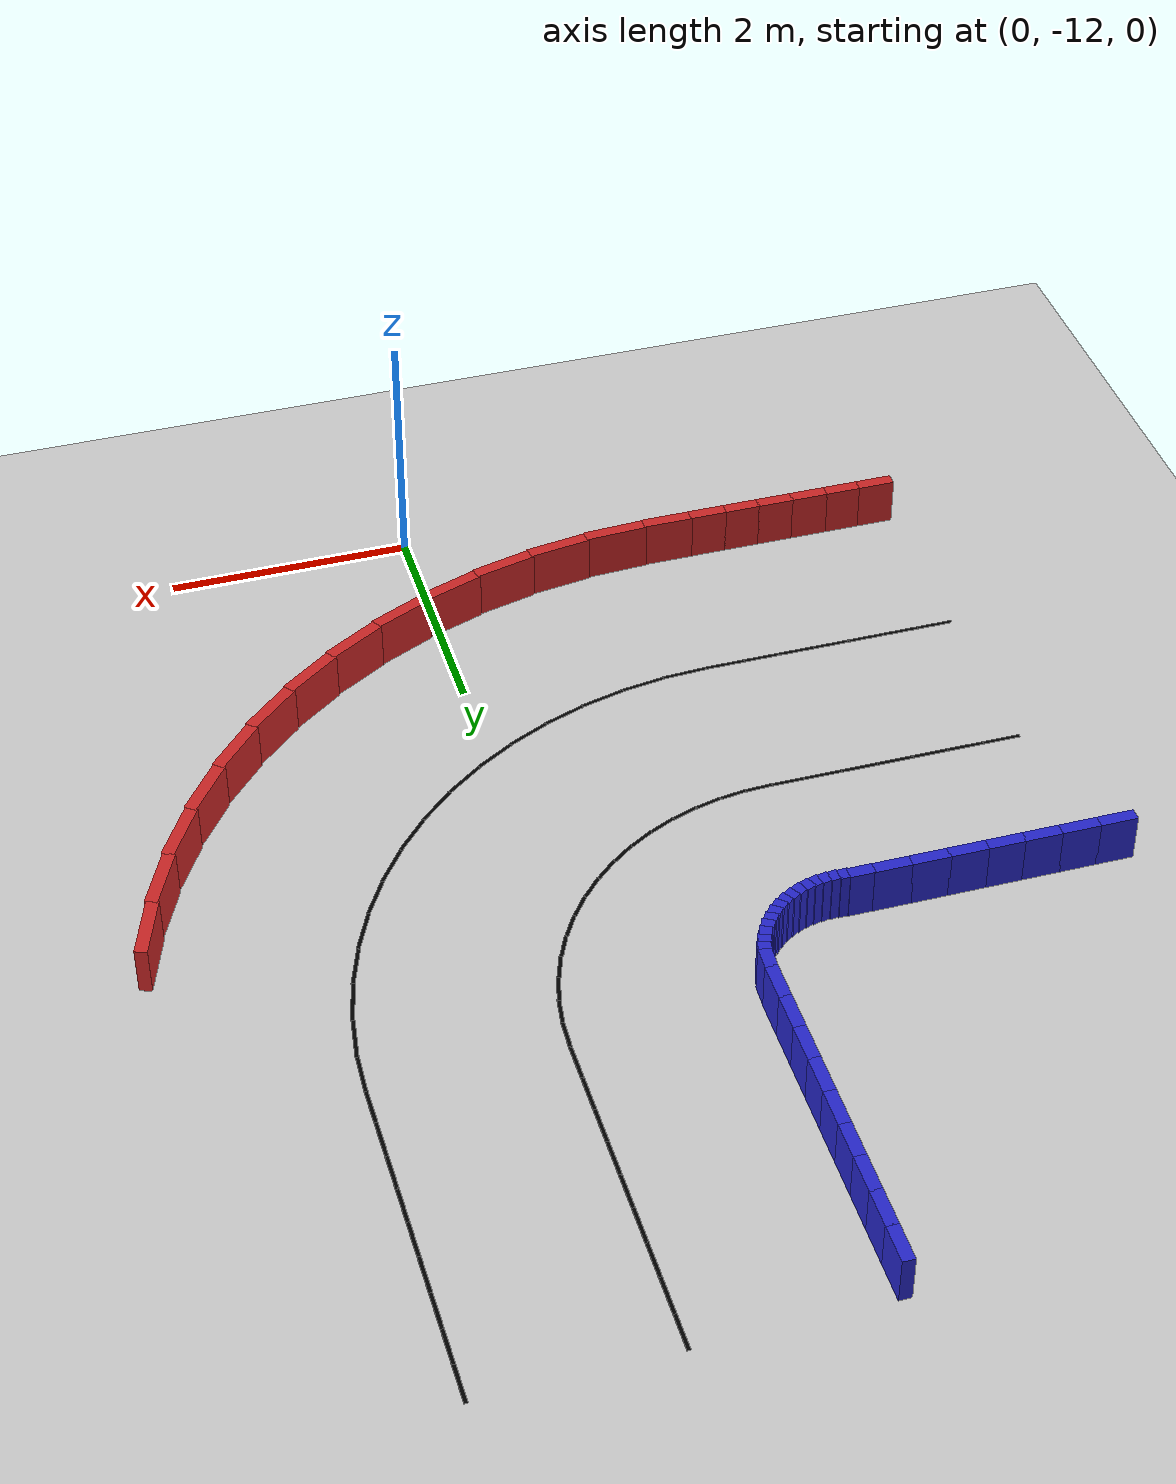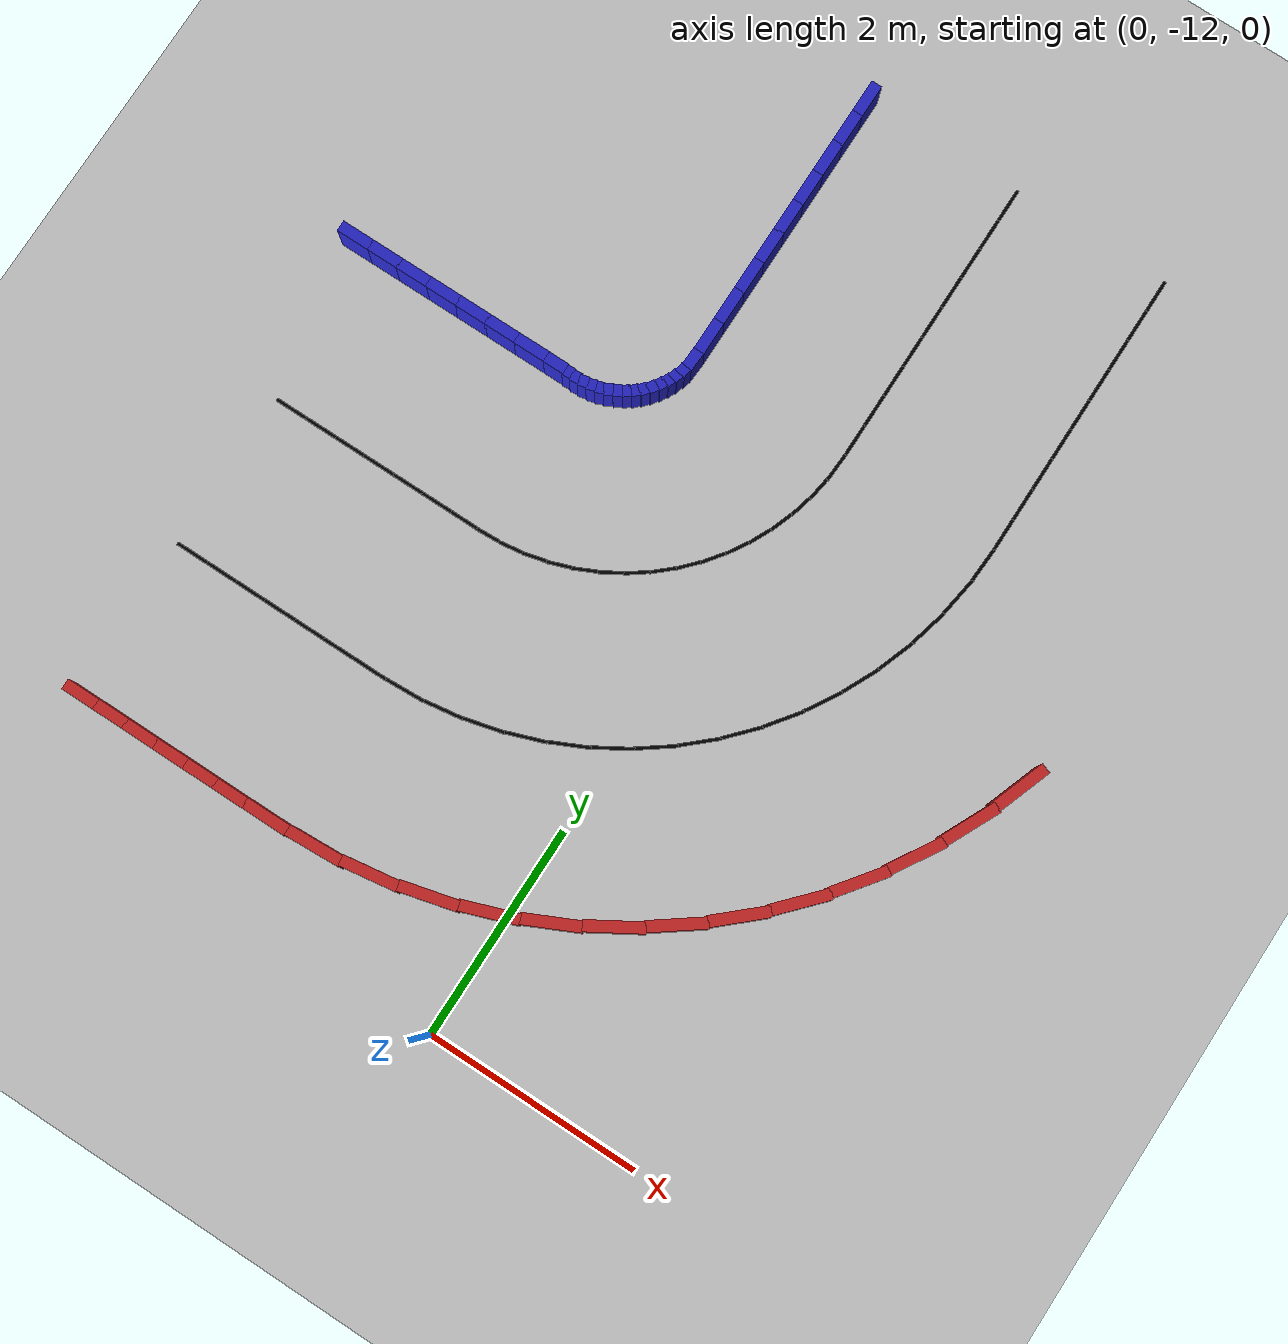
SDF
<sdf version="1.6">
 <world name="3lane_track">
  <include><uri>model://ground_plane</uri></include>
  <include><uri>model://sun</uri></include>
  <model name="iw_38">
   <static>true</static>
   <pose>-4.2500 -6.7500 0.200 0 0 0.0000</pose>
   <link name="l">
    <collision name="c"><geometry><box><size>0.3100 0.1 0.4</size></box></geometry></collision>
    <visual name="v">
     <geometry><box><size>0.3100 0.1 0.4</size></box></geometry>
     <material><ambient>0.15 0.15 0.8 1</ambient><diffuse>0.15 0.15 0.8 1</diffuse></material>
    </visual>
   </link>
  </model>
  <model name="iw_39">
   <static>true</static>
   <pose>-3.9500 -6.7500 0.200 0 0 0.0000</pose>
   <link name="l">
    <collision name="c"><geometry><box><size>0.3100 0.1 0.4</size></box></geometry></collision>
    <visual name="v">
     <geometry><box><size>0.3100 0.1 0.4</size></box></geometry>
     <material><ambient>0.15 0.15 0.8 1</ambient><diffuse>0.15 0.15 0.8 1</diffuse></material>
    </visual>
   </link>
  </model>
  <model name="iw_40">
   <static>true</static>
   <pose>-3.6500 -6.7500 0.200 0 0 0.0000</pose>
   <link name="l">
    <collision name="c"><geometry><box><size>0.3100 0.1 0.4</size></box></geometry></collision>
    <visual name="v">
     <geometry><box><size>0.3100 0.1 0.4</size></box></geometry>
     <material><ambient>0.15 0.15 0.8 1</ambient><diffuse>0.15 0.15 0.8 1</diffuse></material>
    </visual>
   </link>
  </model>
  <model name="iw_41">
   <static>true</static>
   <pose>-3.3500 -6.7500 0.200 0 0 0.0000</pose>
   <link name="l">
    <collision name="c"><geometry><box><size>0.3100 0.1 0.4</size></box></geometry></collision>
    <visual name="v">
     <geometry><box><size>0.3100 0.1 0.4</size></box></geometry>
     <material><ambient>0.15 0.15 0.8 1</ambient><diffuse>0.15 0.15 0.8 1</diffuse></material>
    </visual>
   </link>
  </model>
  <model name="iw_42">
   <static>true</static>
   <pose>-3.0500 -6.7500 0.200 0 0 0.0000</pose>
   <link name="l">
    <collision name="c"><geometry><box><size>0.3100 0.1 0.4</size></box></geometry></collision>
    <visual name="v">
     <geometry><box><size>0.3100 0.1 0.4</size></box></geometry>
     <material><ambient>0.15 0.15 0.8 1</ambient><diffuse>0.15 0.15 0.8 1</diffuse></material>
    </visual>
   </link>
  </model>
  <model name="iw_43">
   <static>true</static>
   <pose>-2.7500 -6.7500 0.200 0 0 0.0000</pose>
   <link name="l">
    <collision name="c"><geometry><box><size>0.3100 0.1 0.4</size></box></geometry></collision>
    <visual name="v">
     <geometry><box><size>0.3100 0.1 0.4</size></box></geometry>
     <material><ambient>0.15 0.15 0.8 1</ambient><diffuse>0.15 0.15 0.8 1</diffuse></material>
    </visual>
   </link>
  </model>
  <model name="iw_44">
   <static>true</static>
   <pose>-2.4500 -6.7500 0.200 0 0 0.0000</pose>
   <link name="l">
    <collision name="c"><geometry><box><size>0.3100 0.1 0.4</size></box></geometry></collision>
    <visual name="v">
     <geometry><box><size>0.3100 0.1 0.4</size></box></geometry>
     <material><ambient>0.15 0.15 0.8 1</ambient><diffuse>0.15 0.15 0.8 1</diffuse></material>
    </visual>
   </link>
  </model>
  <model name="iw_45">
   <static>true</static>
   <pose>-2.2052 -6.7514 0.200 0 0 0.0000</pose>
   <link name="l">
    <collision name="c"><geometry><box><size>0.1996 0.1 0.4</size></box></geometry></collision>
    <visual name="v">
     <geometry><box><size>0.1996 0.1 0.4</size></box></geometry>
     <material><ambient>0.15 0.15 0.8 1</ambient><diffuse>0.15 0.15 0.8 1</diffuse></material>
    </visual>
   </link>
  </model>
  <model name="iw_46">
   <static>true</static>
   <pose>-2.0732 -6.7563 0.200 0 0 0.0491</pose>
   <link name="l">
    <collision name="c"><geometry><box><size>0.0847 0.1 0.4</size></box></geometry></collision>
    <visual name="v">
     <geometry><box><size>0.0847 0.1 0.4</size></box></geometry>
     <material><ambient>0.15 0.15 0.8 1</ambient><diffuse>0.15 0.15 0.8 1</diffuse></material>
    </visual>
   </link>
  </model>
  <model name="iw_47">
   <static>true</static>
   <pose>-1.9988 -6.7598 0.200 0 0 0.1473</pose>
   <link name="l">
    <collision name="c"><geometry><box><size>0.0847 0.1 0.4</size></box></geometry></collision>
    <visual name="v">
     <geometry><box><size>0.0847 0.1 0.4</size></box></geometry>
     <material><ambient>0.15 0.15 0.8 1</ambient><diffuse>0.15 0.15 0.8 1</diffuse></material>
    </visual>
   </link>
  </model>
  <model name="iw_48">
   <static>true</static>
   <pose>-1.9243 -6.7561 0.200 0 0 0.2454</pose>
   <link name="l">
    <collision name="c"><geometry><box><size>0.0847 0.1 0.4</size></box></geometry></collision>
    <visual name="v">
     <geometry><box><size>0.0847 0.1 0.4</size></box></geometry>
     <material><ambient>0.15 0.15 0.8 1</ambient><diffuse>0.15 0.15 0.8 1</diffuse></material>
    </visual>
   </link>
  </model>
  <model name="iw_49">
   <static>true</static>
   <pose>-1.8505 -6.7450 0.200 0 0 0.3436</pose>
   <link name="l">
    <collision name="c"><geometry><box><size>0.0847 0.1 0.4</size></box></geometry></collision>
    <visual name="v">
     <geometry><box><size>0.0847 0.1 0.4</size></box></geometry>
     <material><ambient>0.15 0.15 0.8 1</ambient><diffuse>0.15 0.15 0.8 1</diffuse></material>
    </visual>
   </link>
  </model>
  <model name="iw_50">
   <static>true</static>
   <pose>-1.7782 -6.7268 0.200 0 0 0.4418</pose>
   <link name="l">
    <collision name="c"><geometry><box><size>0.0847 0.1 0.4</size></box></geometry></collision>
    <visual name="v">
     <geometry><box><size>0.0847 0.1 0.4</size></box></geometry>
     <material><ambient>0.15 0.15 0.8 1</ambient><diffuse>0.15 0.15 0.8 1</diffuse></material>
    </visual>
   </link>
  </model>
  <model name="iw_51">
   <static>true</static>
   <pose>-1.7081 -6.7015 0.200 0 0 0.5400</pose>
   <link name="l">
    <collision name="c"><geometry><box><size>0.0847 0.1 0.4</size></box></geometry></collision>
    <visual name="v">
     <geometry><box><size>0.0847 0.1 0.4</size></box></geometry>
     <material><ambient>0.15 0.15 0.8 1</ambient><diffuse>0.15 0.15 0.8 1</diffuse></material>
    </visual>
   </link>
  </model>
  <model name="iw_52">
   <static>true</static>
   <pose>-1.6407 -6.6695 0.200 0 0 0.6381</pose>
   <link name="l">
    <collision name="c"><geometry><box><size>0.0847 0.1 0.4</size></box></geometry></collision>
    <visual name="v">
     <geometry><box><size>0.0847 0.1 0.4</size></box></geometry>
     <material><ambient>0.15 0.15 0.8 1</ambient><diffuse>0.15 0.15 0.8 1</diffuse></material>
    </visual>
   </link>
  </model>
  <model name="iw_53">
   <static>true</static>
   <pose>-1.5768 -6.6311 0.200 0 0 0.7363</pose>
   <link name="l">
    <collision name="c"><geometry><box><size>0.0847 0.1 0.4</size></box></geometry></collision>
    <visual name="v">
     <geometry><box><size>0.0847 0.1 0.4</size></box></geometry>
     <material><ambient>0.15 0.15 0.8 1</ambient><diffuse>0.15 0.15 0.8 1</diffuse></material>
    </visual>
   </link>
  </model>
  <model name="iw_54">
   <static>true</static>
   <pose>-1.5170 -6.5866 0.200 0 0 0.8345</pose>
   <link name="l">
    <collision name="c"><geometry><box><size>0.0847 0.1 0.4</size></box></geometry></collision>
    <visual name="v">
     <geometry><box><size>0.0847 0.1 0.4</size></box></geometry>
     <material><ambient>0.15 0.15 0.8 1</ambient><diffuse>0.15 0.15 0.8 1</diffuse></material>
    </visual>
   </link>
  </model>
  <model name="iw_55">
   <static>true</static>
   <pose>-1.4618 -6.5364 0.200 0 0 0.9327</pose>
   <link name="l">
    <collision name="c"><geometry><box><size>0.0847 0.1 0.4</size></box></geometry></collision>
    <visual name="v">
     <geometry><box><size>0.0847 0.1 0.4</size></box></geometry>
     <material><ambient>0.15 0.15 0.8 1</ambient><diffuse>0.15 0.15 0.8 1</diffuse></material>
    </visual>
   </link>
  </model>
  <model name="iw_56">
   <static>true</static>
   <pose>-1.4118 -6.4811 0.200 0 0 1.0308</pose>
   <link name="l">
    <collision name="c"><geometry><box><size>0.0847 0.1 0.4</size></box></geometry></collision>
    <visual name="v">
     <geometry><box><size>0.0847 0.1 0.4</size></box></geometry>
     <material><ambient>0.15 0.15 0.8 1</ambient><diffuse>0.15 0.15 0.8 1</diffuse></material>
    </visual>
   </link>
  </model>
  <model name="iw_57">
   <static>true</static>
   <pose>-1.3675 -6.4211 0.200 0 0 1.1290</pose>
   <link name="l">
    <collision name="c"><geometry><box><size>0.0847 0.1 0.4</size></box></geometry></collision>
    <visual name="v">
     <geometry><box><size>0.0847 0.1 0.4</size></box></geometry>
     <material><ambient>0.15 0.15 0.8 1</ambient><diffuse>0.15 0.15 0.8 1</diffuse></material>
    </visual>
   </link>
  </model>
  <model name="iw_58">
   <static>true</static>
   <pose>-1.3293 -6.3571 0.200 0 0 1.2272</pose>
   <link name="l">
    <collision name="c"><geometry><box><size>0.0847 0.1 0.4</size></box></geometry></collision>
    <visual name="v">
     <geometry><box><size>0.0847 0.1 0.4</size></box></geometry>
     <material><ambient>0.15 0.15 0.8 1</ambient><diffuse>0.15 0.15 0.8 1</diffuse></material>
    </visual>
   </link>
  </model>
  <model name="iw_59">
   <static>true</static>
   <pose>-1.2975 -6.2896 0.200 0 0 1.3254</pose>
   <link name="l">
    <collision name="c"><geometry><box><size>0.0847 0.1 0.4</size></box></geometry></collision>
    <visual name="v">
     <geometry><box><size>0.0847 0.1 0.4</size></box></geometry>
     <material><ambient>0.15 0.15 0.8 1</ambient><diffuse>0.15 0.15 0.8 1</diffuse></material>
    </visual>
   </link>
  </model>
  <model name="iw_60">
   <static>true</static>
   <pose>-1.2725 -6.2194 0.200 0 0 1.4235</pose>
   <link name="l">
    <collision name="c"><geometry><box><size>0.0847 0.1 0.4</size></box></geometry></collision>
    <visual name="v">
     <geometry><box><size>0.0847 0.1 0.4</size></box></geometry>
     <material><ambient>0.15 0.15 0.8 1</ambient><diffuse>0.15 0.15 0.8 1</diffuse></material>
    </visual>
   </link>
  </model>
  <model name="iw_61">
   <static>true</static>
   <pose>-1.2559 -6.0918 0.200 0 0 1.5217</pose>
   <link name="l">
    <collision name="c"><geometry><box><size>0.1940 0.1 0.4</size></box></geometry></collision>
    <visual name="v">
     <geometry><box><size>0.1940 0.1 0.4</size></box></geometry>
     <material><ambient>0.15 0.15 0.8 1</ambient><diffuse>0.15 0.15 0.8 1</diffuse></material>
    </visual>
   </link>
  </model>
  <model name="iw_62">
   <static>true</static>
   <pose>-1.2500 -5.8437 0.200 0 0 1.5708</pose>
   <link name="l">
    <collision name="c"><geometry><box><size>0.3225 0.1 0.4</size></box></geometry></collision>
    <visual name="v">
     <geometry><box><size>0.3225 0.1 0.4</size></box></geometry>
     <material><ambient>0.15 0.15 0.8 1</ambient><diffuse>0.15 0.15 0.8 1</diffuse></material>
    </visual>
   </link>
  </model>
  <model name="iw_63">
   <static>true</static>
   <pose>-1.2500 -5.5312 0.200 0 0 1.5708</pose>
   <link name="l">
    <collision name="c"><geometry><box><size>0.3225 0.1 0.4</size></box></geometry></collision>
    <visual name="v">
     <geometry><box><size>0.3225 0.1 0.4</size></box></geometry>
     <material><ambient>0.15 0.15 0.8 1</ambient><diffuse>0.15 0.15 0.8 1</diffuse></material>
    </visual>
   </link>
  </model>
  <model name="iw_64">
   <static>true</static>
   <pose>-1.2500 -5.2187 0.200 0 0 1.5708</pose>
   <link name="l">
    <collision name="c"><geometry><box><size>0.3225 0.1 0.4</size></box></geometry></collision>
    <visual name="v">
     <geometry><box><size>0.3225 0.1 0.4</size></box></geometry>
     <material><ambient>0.15 0.15 0.8 1</ambient><diffuse>0.15 0.15 0.8 1</diffuse></material>
    </visual>
   </link>
  </model>
  <model name="iw_65">
   <static>true</static>
   <pose>-1.2500 -4.9062 0.200 0 0 1.5708</pose>
   <link name="l">
    <collision name="c"><geometry><box><size>0.3225 0.1 0.4</size></box></geometry></collision>
    <visual name="v">
     <geometry><box><size>0.3225 0.1 0.4</size></box></geometry>
     <material><ambient>0.15 0.15 0.8 1</ambient><diffuse>0.15 0.15 0.8 1</diffuse></material>
    </visual>
   </link>
  </model>
  <model name="iw_66">
   <static>true</static>
   <pose>-1.2500 -4.5937 0.200 0 0 1.5708</pose>
   <link name="l">
    <collision name="c"><geometry><box><size>0.3225 0.1 0.4</size></box></geometry></collision>
    <visual name="v">
     <geometry><box><size>0.3225 0.1 0.4</size></box></geometry>
     <material><ambient>0.15 0.15 0.8 1</ambient><diffuse>0.15 0.15 0.8 1</diffuse></material>
    </visual>
   </link>
  </model>
  <model name="iw_67">
   <static>true</static>
   <pose>-1.2500 -4.2812 0.200 0 0 1.5708</pose>
   <link name="l">
    <collision name="c"><geometry><box><size>0.3225 0.1 0.4</size></box></geometry></collision>
    <visual name="v">
     <geometry><box><size>0.3225 0.1 0.4</size></box></geometry>
     <material><ambient>0.15 0.15 0.8 1</ambient><diffuse>0.15 0.15 0.8 1</diffuse></material>
    </visual>
   </link>
  </model>
  <model name="iw_68">
   <static>true</static>
   <pose>-1.2500 -3.9687 0.200 0 0 1.5708</pose>
   <link name="l">
    <collision name="c"><geometry><box><size>0.3225 0.1 0.4</size></box></geometry></collision>
    <visual name="v">
     <geometry><box><size>0.3225 0.1 0.4</size></box></geometry>
     <material><ambient>0.15 0.15 0.8 1</ambient><diffuse>0.15 0.15 0.8 1</diffuse></material>
    </visual>
   </link>
  </model>
  <model name="iw_69">
   <static>true</static>
   <pose>-1.2500 -3.6562 0.200 0 0 1.5708</pose>
   <link name="l">
    <collision name="c"><geometry><box><size>0.3225 0.1 0.4</size></box></geometry></collision>
    <visual name="v">
     <geometry><box><size>0.3225 0.1 0.4</size></box></geometry>
     <material><ambient>0.15 0.15 0.8 1</ambient><diffuse>0.15 0.15 0.8 1</diffuse></material>
    </visual>
   </link>
  </model>
  <model name="iw_70">
   <static>true</static>
   <pose>-1.2500 -3.3437 0.200 0 0 1.5708</pose>
   <link name="l">
    <collision name="c"><geometry><box><size>0.3225 0.1 0.4</size></box></geometry></collision>
    <visual name="v">
     <geometry><box><size>0.3225 0.1 0.4</size></box></geometry>
     <material><ambient>0.15 0.15 0.8 1</ambient><diffuse>0.15 0.15 0.8 1</diffuse></material>
    </visual>
   </link>
  </model>
  <model name="ow_39">
   <static>true</static>
   <pose>-3.9500 -11.2500 0.200 0 0 0.0000</pose>
   <link name="l">
    <collision name="c"><geometry><box><size>0.3100 0.1 0.4</size></box></geometry></collision>
    <visual name="v">
     <geometry><box><size>0.3100 0.1 0.4</size></box></geometry>
     <material><ambient>0.8 0.15 0.15 1</ambient><diffuse>0.8 0.15 0.15 1</diffuse></material>
    </visual>
   </link>
  </model>
  <model name="ow_40">
   <static>true</static>
   <pose>-3.6500 -11.2500 0.200 0 0 0.0000</pose>
   <link name="l">
    <collision name="c"><geometry><box><size>0.3100 0.1 0.4</size></box></geometry></collision>
    <visual name="v">
     <geometry><box><size>0.3100 0.1 0.4</size></box></geometry>
     <material><ambient>0.8 0.15 0.15 1</ambient><diffuse>0.8 0.15 0.15 1</diffuse></material>
    </visual>
   </link>
  </model>
  <model name="ow_41">
   <static>true</static>
   <pose>-3.3500 -11.2500 0.200 0 0 0.0000</pose>
   <link name="l">
    <collision name="c"><geometry><box><size>0.3100 0.1 0.4</size></box></geometry></collision>
    <visual name="v">
     <geometry><box><size>0.3100 0.1 0.4</size></box></geometry>
     <material><ambient>0.8 0.15 0.15 1</ambient><diffuse>0.8 0.15 0.15 1</diffuse></material>
    </visual>
   </link>
  </model>
  <model name="ow_42">
   <static>true</static>
   <pose>-3.0500 -11.2500 0.200 0 0 0.0000</pose>
   <link name="l">
    <collision name="c"><geometry><box><size>0.3100 0.1 0.4</size></box></geometry></collision>
    <visual name="v">
     <geometry><box><size>0.3100 0.1 0.4</size></box></geometry>
     <material><ambient>0.8 0.15 0.15 1</ambient><diffuse>0.8 0.15 0.15 1</diffuse></material>
    </visual>
   </link>
  </model>
  <model name="ow_43">
   <static>true</static>
   <pose>-2.7500 -11.2500 0.200 0 0 0.0000</pose>
   <link name="l">
    <collision name="c"><geometry><box><size>0.3100 0.1 0.4</size></box></geometry></collision>
    <visual name="v">
     <geometry><box><size>0.3100 0.1 0.4</size></box></geometry>
     <material><ambient>0.8 0.15 0.15 1</ambient><diffuse>0.8 0.15 0.15 1</diffuse></material>
    </visual>
   </link>
  </model>
  <model name="ow_44">
   <static>true</static>
   <pose>-2.4500 -11.2500 0.200 0 0 0.0000</pose>
   <link name="l">
    <collision name="c"><geometry><box><size>0.3100 0.1 0.4</size></box></geometry></collision>
    <visual name="v">
     <geometry><box><size>0.3100 0.1 0.4</size></box></geometry>
     <material><ambient>0.8 0.15 0.15 1</ambient><diffuse>0.8 0.15 0.15 1</diffuse></material>
    </visual>
   </link>
  </model>
  <model name="ow_45">
   <static>true</static>
   <pose>-2.0948 -11.2486 0.200 0 0 0.0000</pose>
   <link name="l">
    <collision name="c"><geometry><box><size>0.4204 0.1 0.4</size></box></geometry></collision>
    <visual name="v">
     <geometry><box><size>0.4204 0.1 0.4</size></box></geometry>
     <material><ambient>0.8 0.15 0.15 1</ambient><diffuse>0.8 0.15 0.15 1</diffuse></material>
    </visual>
   </link>
  </model>
  <model name="ow_46">
   <static>true</static>
   <pose>-1.6327 -11.2292 0.200 0 0 0.0491</pose>
   <link name="l">
    <collision name="c"><geometry><box><size>0.5251 0.1 0.4</size></box></geometry></collision>
    <visual name="v">
     <geometry><box><size>0.5251 0.1 0.4</size></box></geometry>
     <material><ambient>0.8 0.15 0.15 1</ambient><diffuse>0.8 0.15 0.15 1</diffuse></material>
    </visual>
   </link>
  </model>
  <model name="ow_47">
   <static>true</static>
   <pose>-1.1219 -11.1681 0.200 0 0 0.1473</pose>
   <link name="l">
    <collision name="c"><geometry><box><size>0.5251 0.1 0.4</size></box></geometry></collision>
    <visual name="v">
     <geometry><box><size>0.5251 0.1 0.4</size></box></geometry>
     <material><ambient>0.8 0.15 0.15 1</ambient><diffuse>0.8 0.15 0.15 1</diffuse></material>
    </visual>
   </link>
  </model>
  <model name="ow_48">
   <static>true</static>
   <pose>-0.6196 -11.0571 0.200 0 0 0.2454</pose>
   <link name="l">
    <collision name="c"><geometry><box><size>0.5251 0.1 0.4</size></box></geometry></collision>
    <visual name="v">
     <geometry><box><size>0.5251 0.1 0.4</size></box></geometry>
     <material><ambient>0.8 0.15 0.15 1</ambient><diffuse>0.8 0.15 0.15 1</diffuse></material>
    </visual>
   </link>
  </model>
  <model name="ow_49">
   <static>true</static>
   <pose>-0.1305 -10.8975 0.200 0 0 0.3436</pose>
   <link name="l">
    <collision name="c"><geometry><box><size>0.5251 0.1 0.4</size></box></geometry></collision>
    <visual name="v">
     <geometry><box><size>0.5251 0.1 0.4</size></box></geometry>
     <material><ambient>0.8 0.15 0.15 1</ambient><diffuse>0.8 0.15 0.15 1</diffuse></material>
    </visual>
   </link>
  </model>
  <model name="ow_50">
   <static>true</static>
   <pose>0.3405 -10.6906 0.200 0 0 0.4418</pose>
   <link name="l">
    <collision name="c"><geometry><box><size>0.5251 0.1 0.4</size></box></geometry></collision>
    <visual name="v">
     <geometry><box><size>0.5251 0.1 0.4</size></box></geometry>
     <material><ambient>0.8 0.15 0.15 1</ambient><diffuse>0.8 0.15 0.15 1</diffuse></material>
    </visual>
   </link>
  </model>
  <model name="ow_51">
   <static>true</static>
   <pose>0.7890 -10.4386 0.200 0 0 0.5400</pose>
   <link name="l">
    <collision name="c"><geometry><box><size>0.5251 0.1 0.4</size></box></geometry></collision>
    <visual name="v">
     <geometry><box><size>0.5251 0.1 0.4</size></box></geometry>
     <material><ambient>0.8 0.15 0.15 1</ambient><diffuse>0.8 0.15 0.15 1</diffuse></material>
    </visual>
   </link>
  </model>
  <model name="ow_52">
   <static>true</static>
   <pose>1.2106 -10.1439 0.200 0 0 0.6381</pose>
   <link name="l">
    <collision name="c"><geometry><box><size>0.5251 0.1 0.4</size></box></geometry></collision>
    <visual name="v">
     <geometry><box><size>0.5251 0.1 0.4</size></box></geometry>
     <material><ambient>0.8 0.15 0.15 1</ambient><diffuse>0.8 0.15 0.15 1</diffuse></material>
    </visual>
   </link>
  </model>
  <model name="ow_53">
   <static>true</static>
   <pose>1.6013 -9.8092 0.200 0 0 0.7363</pose>
   <link name="l">
    <collision name="c"><geometry><box><size>0.5251 0.1 0.4</size></box></geometry></collision>
    <visual name="v">
     <geometry><box><size>0.5251 0.1 0.4</size></box></geometry>
     <material><ambient>0.8 0.15 0.15 1</ambient><diffuse>0.8 0.15 0.15 1</diffuse></material>
    </visual>
   </link>
  </model>
  <model name="ow_54">
   <static>true</static>
   <pose>1.9574 -9.4379 0.200 0 0 0.8345</pose>
   <link name="l">
    <collision name="c"><geometry><box><size>0.5251 0.1 0.4</size></box></geometry></collision>
    <visual name="v">
     <geometry><box><size>0.5251 0.1 0.4</size></box></geometry>
     <material><ambient>0.8 0.15 0.15 1</ambient><diffuse>0.8 0.15 0.15 1</diffuse></material>
    </visual>
   </link>
  </model>
  <model name="ow_55">
   <static>true</static>
   <pose>2.2753 -9.0335 0.200 0 0 0.9327</pose>
   <link name="l">
    <collision name="c"><geometry><box><size>0.5251 0.1 0.4</size></box></geometry></collision>
    <visual name="v">
     <geometry><box><size>0.5251 0.1 0.4</size></box></geometry>
     <material><ambient>0.8 0.15 0.15 1</ambient><diffuse>0.8 0.15 0.15 1</diffuse></material>
    </visual>
   </link>
  </model>
  <model name="ow_56">
   <static>true</static>
   <pose>2.5520 -8.5998 0.200 0 0 1.0308</pose>
   <link name="l">
    <collision name="c"><geometry><box><size>0.5251 0.1 0.4</size></box></geometry></collision>
    <visual name="v">
     <geometry><box><size>0.5251 0.1 0.4</size></box></geometry>
     <material><ambient>0.8 0.15 0.15 1</ambient><diffuse>0.8 0.15 0.15 1</diffuse></material>
    </visual>
   </link>
  </model>
  <model name="ow_57">
   <static>true</static>
   <pose>2.7849 -8.1411 0.200 0 0 1.1290</pose>
   <link name="l">
    <collision name="c"><geometry><box><size>0.5251 0.1 0.4</size></box></geometry></collision>
    <visual name="v">
     <geometry><box><size>0.5251 0.1 0.4</size></box></geometry>
     <material><ambient>0.8 0.15 0.15 1</ambient><diffuse>0.8 0.15 0.15 1</diffuse></material>
    </visual>
   </link>
  </model>
  <model name="ow_58">
   <static>true</static>
   <pose>2.9718 -7.6618 0.200 0 0 1.2272</pose>
   <link name="l">
    <collision name="c"><geometry><box><size>0.5251 0.1 0.4</size></box></geometry></collision>
    <visual name="v">
     <geometry><box><size>0.5251 0.1 0.4</size></box></geometry>
     <material><ambient>0.8 0.15 0.15 1</ambient><diffuse>0.8 0.15 0.15 1</diffuse></material>
    </visual>
   </link>
  </model>
  <model name="line_78">
   <static>true</static>
   <pose>-3.9500 -8.2500 0.002 0 0 0.0000</pose>
   <link name="l">
    <visual name="v">
     <geometry><box><size>0.3100 0.03 0.002</size></box></geometry>
     <material><ambient>0 0 0 1</ambient><diffuse>0 0 0 1</diffuse></material>
    </visual>
   </link>
  </model>
  <model name="line_79">
   <static>true</static>
   <pose>-3.9500 -9.7500 0.002 0 0 0.0000</pose>
   <link name="l">
    <visual name="v">
     <geometry><box><size>0.3100 0.03 0.002</size></box></geometry>
     <material><ambient>0 0 0 1</ambient><diffuse>0 0 0 1</diffuse></material>
    </visual>
   </link>
  </model>
  <model name="line_80">
   <static>true</static>
   <pose>-3.6500 -8.2500 0.002 0 0 0.0000</pose>
   <link name="l">
    <visual name="v">
     <geometry><box><size>0.3100 0.03 0.002</size></box></geometry>
     <material><ambient>0 0 0 1</ambient><diffuse>0 0 0 1</diffuse></material>
    </visual>
   </link>
  </model>
  <model name="line_81">
   <static>true</static>
   <pose>-3.6500 -9.7500 0.002 0 0 0.0000</pose>
   <link name="l">
    <visual name="v">
     <geometry><box><size>0.3100 0.03 0.002</size></box></geometry>
     <material><ambient>0 0 0 1</ambient><diffuse>0 0 0 1</diffuse></material>
    </visual>
   </link>
  </model>
  <model name="line_82">
   <static>true</static>
   <pose>-3.3500 -8.2500 0.002 0 0 0.0000</pose>
   <link name="l">
    <visual name="v">
     <geometry><box><size>0.3100 0.03 0.002</size></box></geometry>
     <material><ambient>0 0 0 1</ambient><diffuse>0 0 0 1</diffuse></material>
    </visual>
   </link>
  </model>
  <model name="line_83">
   <static>true</static>
   <pose>-3.3500 -9.7500 0.002 0 0 0.0000</pose>
   <link name="l">
    <visual name="v">
     <geometry><box><size>0.3100 0.03 0.002</size></box></geometry>
     <material><ambient>0 0 0 1</ambient><diffuse>0 0 0 1</diffuse></material>
    </visual>
   </link>
  </model>
  <model name="line_84">
   <static>true</static>
   <pose>-3.0500 -8.2500 0.002 0 0 0.0000</pose>
   <link name="l">
    <visual name="v">
     <geometry><box><size>0.3100 0.03 0.002</size></box></geometry>
     <material><ambient>0 0 0 1</ambient><diffuse>0 0 0 1</diffuse></material>
    </visual>
   </link>
  </model>
  <model name="line_85">
   <static>true</static>
   <pose>-3.0500 -9.7500 0.002 0 0 0.0000</pose>
   <link name="l">
    <visual name="v">
     <geometry><box><size>0.3100 0.03 0.002</size></box></geometry>
     <material><ambient>0 0 0 1</ambient><diffuse>0 0 0 1</diffuse></material>
    </visual>
   </link>
  </model>
  <model name="line_86">
   <static>true</static>
   <pose>-2.7500 -8.2500 0.002 0 0 0.0000</pose>
   <link name="l">
    <visual name="v">
     <geometry><box><size>0.3100 0.03 0.002</size></box></geometry>
     <material><ambient>0 0 0 1</ambient><diffuse>0 0 0 1</diffuse></material>
    </visual>
   </link>
  </model>
  <model name="line_87">
   <static>true</static>
   <pose>-2.7500 -9.7500 0.002 0 0 0.0000</pose>
   <link name="l">
    <visual name="v">
     <geometry><box><size>0.3100 0.03 0.002</size></box></geometry>
     <material><ambient>0 0 0 1</ambient><diffuse>0 0 0 1</diffuse></material>
    </visual>
   </link>
  </model>
  <model name="line_88">
   <static>true</static>
   <pose>-2.4500 -8.2500 0.002 0 0 0.0000</pose>
   <link name="l">
    <visual name="v">
     <geometry><box><size>0.3100 0.03 0.002</size></box></geometry>
     <material><ambient>0 0 0 1</ambient><diffuse>0 0 0 1</diffuse></material>
    </visual>
   </link>
  </model>
  <model name="line_89">
   <static>true</static>
   <pose>-2.4500 -9.7500 0.002 0 0 0.0000</pose>
   <link name="l">
    <visual name="v">
     <geometry><box><size>0.3100 0.03 0.002</size></box></geometry>
     <material><ambient>0 0 0 1</ambient><diffuse>0 0 0 1</diffuse></material>
    </visual>
   </link>
  </model>
  <model name="line_90">
   <static>true</static>
   <pose>-2.1684 -8.2505 0.002 0 0 0.0000</pose>
   <link name="l">
    <visual name="v">
     <geometry><box><size>0.2732 0.03 0.002</size></box></geometry>
     <material><ambient>0 0 0 1</ambient><diffuse>0 0 0 1</diffuse></material>
    </visual>
   </link>
  </model>
  <model name="line_91">
   <static>true</static>
   <pose>-2.1316 -9.7495 0.002 0 0 0.0000</pose>
   <link name="l">
    <visual name="v">
     <geometry><box><size>0.3468 0.03 0.002</size></box></geometry>
     <material><ambient>0 0 0 1</ambient><diffuse>0 0 0 1</diffuse></material>
    </visual>
   </link>
  </model>
  <model name="line_92">
   <static>true</static>
   <pose>-1.9264 -8.2473 0.002 0 0 0.0491</pose>
   <link name="l">
    <visual name="v">
     <geometry><box><size>0.2309 0.03 0.002</size></box></geometry>
     <material><ambient>0 0 0 1</ambient><diffuse>0 0 0 1</diffuse></material>
    </visual>
   </link>
  </model>
  <model name="line_93">
   <static>true</static>
   <pose>-1.7795 -9.7383 0.002 0 0 0.0491</pose>
   <link name="l">
    <visual name="v">
     <geometry><box><size>0.3779 0.03 0.002</size></box></geometry>
     <material><ambient>0 0 0 1</ambient><diffuse>0 0 0 1</diffuse></material>
    </visual>
   </link>
  </model>
  <model name="line_94">
   <static>true</static>
   <pose>-1.7065 -8.2293 0.002 0 0 0.1473</pose>
   <link name="l">
    <visual name="v">
     <geometry><box><size>0.2309 0.03 0.002</size></box></geometry>
     <material><ambient>0 0 0 1</ambient><diffuse>0 0 0 1</diffuse></material>
    </visual>
   </link>
  </model>
  <model name="line_95">
   <static>true</static>
   <pose>-1.4142 -9.6987 0.002 0 0 0.1473</pose>
   <link name="l">
    <visual name="v">
     <geometry><box><size>0.3779 0.03 0.002</size></box></geometry>
     <material><ambient>0 0 0 1</ambient><diffuse>0 0 0 1</diffuse></material>
    </visual>
   </link>
  </model>
  <model name="line_96">
   <static>true</static>
   <pose>-1.4894 -8.1897 0.002 0 0 0.2454</pose>
   <link name="l">
    <visual name="v">
     <geometry><box><size>0.2309 0.03 0.002</size></box></geometry>
     <material><ambient>0 0 0 1</ambient><diffuse>0 0 0 1</diffuse></material>
    </visual>
   </link>
  </model>
  <model name="line_97">
   <static>true</static>
   <pose>-1.0545 -9.6234 0.002 0 0 0.2454</pose>
   <link name="l">
    <visual name="v">
     <geometry><box><size>0.3779 0.03 0.002</size></box></geometry>
     <material><ambient>0 0 0 1</ambient><diffuse>0 0 0 1</diffuse></material>
    </visual>
   </link>
  </model>
  <model name="line_98">
   <static>true</static>
   <pose>-1.2772 -8.1292 0.002 0 0 0.3436</pose>
   <link name="l">
    <visual name="v">
     <geometry><box><size>0.2309 0.03 0.002</size></box></geometry>
     <material><ambient>0 0 0 1</ambient><diffuse>0 0 0 1</diffuse></material>
    </visual>
   </link>
  </model>
  <model name="line_99">
   <static>true</static>
   <pose>-0.7039 -9.5133 0.002 0 0 0.3436</pose>
   <link name="l">
    <visual name="v">
     <geometry><box><size>0.3779 0.03 0.002</size></box></geometry>
     <material><ambient>0 0 0 1</ambient><diffuse>0 0 0 1</diffuse></material>
    </visual>
   </link>
  </model>
  <model name="line_100">
   <static>true</static>
   <pose>-1.0720 -8.0481 0.002 0 0 0.4418</pose>
   <link name="l">
    <visual name="v">
     <geometry><box><size>0.2309 0.03 0.002</size></box></geometry>
     <material><ambient>0 0 0 1</ambient><diffuse>0 0 0 1</diffuse></material>
    </visual>
   </link>
  </model>
  <model name="line_101">
   <static>true</static>
   <pose>-0.3658 -9.3693 0.002 0 0 0.4418</pose>
   <link name="l">
    <visual name="v">
     <geometry><box><size>0.3779 0.03 0.002</size></box></geometry>
     <material><ambient>0 0 0 1</ambient><diffuse>0 0 0 1</diffuse></material>
    </visual>
   </link>
  </model>
  <model name="line_102">
   <static>true</static>
   <pose>-0.8757 -7.9472 0.002 0 0 0.5400</pose>
   <link name="l">
    <visual name="v">
     <geometry><box><size>0.2309 0.03 0.002</size></box></geometry>
     <material><ambient>0 0 0 1</ambient><diffuse>0 0 0 1</diffuse></material>
    </visual>
   </link>
  </model>
  <model name="line_103">
   <static>true</static>
   <pose>-0.0434 -9.1929 0.002 0 0 0.5400</pose>
   <link name="l">
    <visual name="v">
     <geometry><box><size>0.3779 0.03 0.002</size></box></geometry>
     <material><ambient>0 0 0 1</ambient><diffuse>0 0 0 1</diffuse></material>
    </visual>
   </link>
  </model>
  <model name="line_104">
   <static>true</static>
   <pose>-0.6903 -7.8277 0.002 0 0 0.6381</pose>
   <link name="l">
    <visual name="v">
     <geometry><box><size>0.2309 0.03 0.002</size></box></geometry>
     <material><ambient>0 0 0 1</ambient><diffuse>0 0 0 1</diffuse></material>
    </visual>
   </link>
  </model>
  <model name="line_105">
   <static>true</static>
   <pose>0.2602 -8.9858 0.002 0 0 0.6381</pose>
   <link name="l">
    <visual name="v">
     <geometry><box><size>0.3779 0.03 0.002</size></box></geometry>
     <material><ambient>0 0 0 1</ambient><diffuse>0 0 0 1</diffuse></material>
    </visual>
   </link>
  </model>
  <model name="line_106">
   <static>true</static>
   <pose>-0.5174 -7.6905 0.002 0 0 0.7363</pose>
   <link name="l">
    <visual name="v">
     <geometry><box><size>0.2309 0.03 0.002</size></box></geometry>
     <material><ambient>0 0 0 1</ambient><diffuse>0 0 0 1</diffuse></material>
    </visual>
   </link>
  </model>
  <model name="line_107">
   <static>true</static>
   <pose>0.5419 -8.7499 0.002 0 0 0.7363</pose>
   <link name="l">
    <visual name="v">
     <geometry><box><size>0.3779 0.03 0.002</size></box></geometry>
     <material><ambient>0 0 0 1</ambient><diffuse>0 0 0 1</diffuse></material>
    </visual>
   </link>
  </model>
  <model name="line_108">
   <static>true</static>
   <pose>-0.3589 -7.5370 0.002 0 0 0.8345</pose>
   <link name="l">
    <visual name="v">
     <geometry><box><size>0.2309 0.03 0.002</size></box></geometry>
     <material><ambient>0 0 0 1</ambient><diffuse>0 0 0 1</diffuse></material>
    </visual>
   </link>
  </model>
  <model name="line_109">
   <static>true</static>
   <pose>0.7992 -8.4875 0.002 0 0 0.8345</pose>
   <link name="l">
    <visual name="v">
     <geometry><box><size>0.3779 0.03 0.002</size></box></geometry>
     <material><ambient>0 0 0 1</ambient><diffuse>0 0 0 1</diffuse></material>
    </visual>
   </link>
  </model>
  <model name="line_110">
   <static>true</static>
   <pose>-0.2161 -7.3688 0.002 0 0 0.9327</pose>
   <link name="l">
    <visual name="v">
     <geometry><box><size>0.2309 0.03 0.002</size></box></geometry>
     <material><ambient>0 0 0 1</ambient><diffuse>0 0 0 1</diffuse></material>
    </visual>
   </link>
  </model>
  <model name="line_111">
   <static>true</static>
   <pose>1.0296 -8.2011 0.002 0 0 0.9327</pose>
   <link name="l">
    <visual name="v">
     <geometry><box><size>0.3779 0.03 0.002</size></box></geometry>
     <material><ambient>0 0 0 1</ambient><diffuse>0 0 0 1</diffuse></material>
    </visual>
   </link>
  </model>
  <model name="line_112">
   <static>true</static>
   <pose>-0.0906 -7.1873 0.002 0 0 1.0308</pose>
   <link name="l">
    <visual name="v">
     <geometry><box><size>0.2309 0.03 0.002</size></box></geometry>
     <material><ambient>0 0 0 1</ambient><diffuse>0 0 0 1</diffuse></material>
    </visual>
   </link>
  </model>
  <model name="line_113">
   <static>true</static>
   <pose>1.2307 -7.8936 0.002 0 0 1.0308</pose>
   <link name="l">
    <visual name="v">
     <geometry><box><size>0.3779 0.03 0.002</size></box></geometry>
     <material><ambient>0 0 0 1</ambient><diffuse>0 0 0 1</diffuse></material>
    </visual>
   </link>
  </model>
  <model name="line_114">
   <static>true</static>
   <pose>0.0166 -6.9945 0.002 0 0 1.1290</pose>
   <link name="l">
    <visual name="v">
     <geometry><box><size>0.2309 0.03 0.002</size></box></geometry>
     <material><ambient>0 0 0 1</ambient><diffuse>0 0 0 1</diffuse></material>
    </visual>
   </link>
  </model>
  <model name="line_115">
   <static>true</static>
   <pose>1.4008 -7.5678 0.002 0 0 1.1290</pose>
   <link name="l">
    <visual name="v">
     <geometry><box><size>0.3779 0.03 0.002</size></box></geometry>
     <material><ambient>0 0 0 1</ambient><diffuse>0 0 0 1</diffuse></material>
    </visual>
   </link>
  </model>
  <model name="line_116">
   <static>true</static>
   <pose>0.1044 -6.7920 0.002 0 0 1.2272</pose>
   <link name="l">
    <visual name="v">
     <geometry><box><size>0.2309 0.03 0.002</size></box></geometry>
     <material><ambient>0 0 0 1</ambient><diffuse>0 0 0 1</diffuse></material>
    </visual>
   </link>
  </model>
  <model name="line_117">
   <static>true</static>
   <pose>1.5381 -7.2269 0.002 0 0 1.2272</pose>
   <link name="l">
    <visual name="v">
     <geometry><box><size>0.3779 0.03 0.002</size></box></geometry>
     <material><ambient>0 0 0 1</ambient><diffuse>0 0 0 1</diffuse></material>
    </visual>
   </link>
  </model>
  <model name="line_118">
   <static>true</static>
   <pose>0.1719 -6.5819 0.002 0 0 1.3254</pose>
   <link name="l">
    <visual name="v">
     <geometry><box><size>0.2309 0.03 0.002</size></box></geometry>
     <material><ambient>0 0 0 1</ambient><diffuse>0 0 0 1</diffuse></material>
    </visual>
   </link>
  </model>
  <model name="line_119">
   <static>true</static>
   <pose>1.6413 -6.8742 0.002 0 0 1.3254</pose>
   <link name="l">
    <visual name="v">
     <geometry><box><size>0.3779 0.03 0.002</size></box></geometry>
     <material><ambient>0 0 0 1</ambient><diffuse>0 0 0 1</diffuse></material>
    </visual>
   </link>
  </model>
  <model name="line_120">
   <static>true</static>
   <pose>0.2185 -6.3662 0.002 0 0 1.4235</pose>
   <link name="l">
    <visual name="v">
     <geometry><box><size>0.2309 0.03 0.002</size></box></geometry>
     <material><ambient>0 0 0 1</ambient><diffuse>0 0 0 1</diffuse></material>
    </visual>
   </link>
  </model>
  <model name="line_121">
   <static>true</static>
   <pose>1.7094 -6.5131 0.002 0 0 1.4235</pose>
   <link name="l">
    <visual name="v">
     <geometry><box><size>0.3779 0.03 0.002</size></box></geometry>
     <material><ambient>0 0 0 1</ambient><diffuse>0 0 0 1</diffuse></material>
    </visual>
   </link>
  </model>
  <model name="line_122">
   <static>true</static>
   <pose>0.2432 -6.1286 0.002 0 0 1.5217</pose>
   <link name="l">
    <visual name="v">
     <geometry><box><size>0.2676 0.03 0.002</size></box></geometry>
     <material><ambient>0 0 0 1</ambient><diffuse>0 0 0 1</diffuse></material>
    </visual>
   </link>
  </model>
  <model name="line_123">
   <static>true</static>
   <pose>1.7423 -6.1654 0.002 0 0 1.5217</pose>
   <link name="l">
    <visual name="v">
     <geometry><box><size>0.3412 0.03 0.002</size></box></geometry>
     <material><ambient>0 0 0 1</ambient><diffuse>0 0 0 1</diffuse></material>
    </visual>
   </link>
  </model>
  <model name="line_124">
   <static>true</static>
   <pose>0.2500 -5.8437 0.002 0 0 1.5708</pose>
   <link name="l">
    <visual name="v">
     <geometry><box><size>0.3225 0.03 0.002</size></box></geometry>
     <material><ambient>0 0 0 1</ambient><diffuse>0 0 0 1</diffuse></material>
    </visual>
   </link>
  </model>
  <model name="line_125">
   <static>true</static>
   <pose>1.7500 -5.8437 0.002 0 0 1.5708</pose>
   <link name="l">
    <visual name="v">
     <geometry><box><size>0.3225 0.03 0.002</size></box></geometry>
     <material><ambient>0 0 0 1</ambient><diffuse>0 0 0 1</diffuse></material>
    </visual>
   </link>
  </model>
  <model name="line_126">
   <static>true</static>
   <pose>0.2500 -5.5312 0.002 0 0 1.5708</pose>
   <link name="l">
    <visual name="v">
     <geometry><box><size>0.3225 0.03 0.002</size></box></geometry>
     <material><ambient>0 0 0 1</ambient><diffuse>0 0 0 1</diffuse></material>
    </visual>
   </link>
  </model>
  <model name="line_127">
   <static>true</static>
   <pose>1.7500 -5.5312 0.002 0 0 1.5708</pose>
   <link name="l">
    <visual name="v">
     <geometry><box><size>0.3225 0.03 0.002</size></box></geometry>
     <material><ambient>0 0 0 1</ambient><diffuse>0 0 0 1</diffuse></material>
    </visual>
   </link>
  </model>
  <model name="line_128">
   <static>true</static>
   <pose>0.2500 -5.2187 0.002 0 0 1.5708</pose>
   <link name="l">
    <visual name="v">
     <geometry><box><size>0.3225 0.03 0.002</size></box></geometry>
     <material><ambient>0 0 0 1</ambient><diffuse>0 0 0 1</diffuse></material>
    </visual>
   </link>
  </model>
  <model name="line_129">
   <static>true</static>
   <pose>1.7500 -5.2187 0.002 0 0 1.5708</pose>
   <link name="l">
    <visual name="v">
     <geometry><box><size>0.3225 0.03 0.002</size></box></geometry>
     <material><ambient>0 0 0 1</ambient><diffuse>0 0 0 1</diffuse></material>
    </visual>
   </link>
  </model>
  <model name="line_130">
   <static>true</static>
   <pose>0.2500 -4.9062 0.002 0 0 1.5708</pose>
   <link name="l">
    <visual name="v">
     <geometry><box><size>0.3225 0.03 0.002</size></box></geometry>
     <material><ambient>0 0 0 1</ambient><diffuse>0 0 0 1</diffuse></material>
    </visual>
   </link>
  </model>
  <model name="line_131">
   <static>true</static>
   <pose>1.7500 -4.9062 0.002 0 0 1.5708</pose>
   <link name="l">
    <visual name="v">
     <geometry><box><size>0.3225 0.03 0.002</size></box></geometry>
     <material><ambient>0 0 0 1</ambient><diffuse>0 0 0 1</diffuse></material>
    </visual>
   </link>
  </model>
  <model name="line_132">
   <static>true</static>
   <pose>0.2500 -4.5937 0.002 0 0 1.5708</pose>
   <link name="l">
    <visual name="v">
     <geometry><box><size>0.3225 0.03 0.002</size></box></geometry>
     <material><ambient>0 0 0 1</ambient><diffuse>0 0 0 1</diffuse></material>
    </visual>
   </link>
  </model>
  <model name="line_133">
   <static>true</static>
   <pose>1.7500 -4.5937 0.002 0 0 1.5708</pose>
   <link name="l">
    <visual name="v">
     <geometry><box><size>0.3225 0.03 0.002</size></box></geometry>
     <material><ambient>0 0 0 1</ambient><diffuse>0 0 0 1</diffuse></material>
    </visual>
   </link>
  </model>
  <model name="line_134">
   <static>true</static>
   <pose>0.2500 -4.2812 0.002 0 0 1.5708</pose>
   <link name="l">
    <visual name="v">
     <geometry><box><size>0.3225 0.03 0.002</size></box></geometry>
     <material><ambient>0 0 0 1</ambient><diffuse>0 0 0 1</diffuse></material>
    </visual>
   </link>
  </model>
  <model name="line_135">
   <static>true</static>
   <pose>1.7500 -4.2812 0.002 0 0 1.5708</pose>
   <link name="l">
    <visual name="v">
     <geometry><box><size>0.3225 0.03 0.002</size></box></geometry>
     <material><ambient>0 0 0 1</ambient><diffuse>0 0 0 1</diffuse></material>
    </visual>
   </link>
  </model>
  <model name="line_136">
   <static>true</static>
   <pose>0.2500 -3.9687 0.002 0 0 1.5708</pose>
   <link name="l">
    <visual name="v">
     <geometry><box><size>0.3225 0.03 0.002</size></box></geometry>
     <material><ambient>0 0 0 1</ambient><diffuse>0 0 0 1</diffuse></material>
    </visual>
   </link>
  </model>
  <model name="line_137">
   <static>true</static>
   <pose>1.7500 -3.9687 0.002 0 0 1.5708</pose>
   <link name="l">
    <visual name="v">
     <geometry><box><size>0.3225 0.03 0.002</size></box></geometry>
     <material><ambient>0 0 0 1</ambient><diffuse>0 0 0 1</diffuse></material>
    </visual>
   </link>
  </model>
  <model name="line_138">
   <static>true</static>
   <pose>0.2500 -3.6562 0.002 0 0 1.5708</pose>
   <link name="l">
    <visual name="v">
     <geometry><box><size>0.3225 0.03 0.002</size></box></geometry>
     <material><ambient>0 0 0 1</ambient><diffuse>0 0 0 1</diffuse></material>
    </visual>
   </link>
  </model>
  <model name="line_139">
   <static>true</static>
   <pose>1.7500 -3.6562 0.002 0 0 1.5708</pose>
   <link name="l">
    <visual name="v">
     <geometry><box><size>0.3225 0.03 0.002</size></box></geometry>
     <material><ambient>0 0 0 1</ambient><diffuse>0 0 0 1</diffuse></material>
    </visual>
   </link>
  </model>
  <model name="line_140">
   <static>true</static>
   <pose>0.2500 -3.3437 0.002 0 0 1.5708</pose>
   <link name="l">
    <visual name="v">
     <geometry><box><size>0.3225 0.03 0.002</size></box></geometry>
     <material><ambient>0 0 0 1</ambient><diffuse>0 0 0 1</diffuse></material>
    </visual>
   </link>
  </model>
  <model name="line_141">
   <static>true</static>
   <pose>1.7500 -3.3437 0.002 0 0 1.5708</pose>
   <link name="l">
    <visual name="v">
     <geometry><box><size>0.3225 0.03 0.002</size></box></geometry>
     <material><ambient>0 0 0 1</ambient><diffuse>0 0 0 1</diffuse></material>
    </visual>
   </link>
  </model>
 </world>
</sdf>
